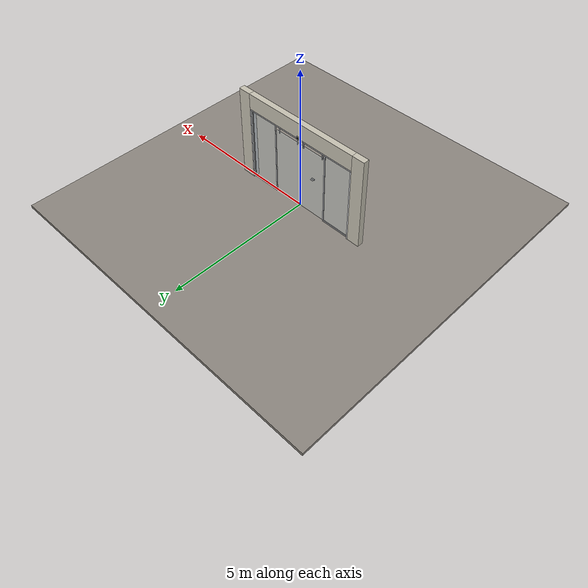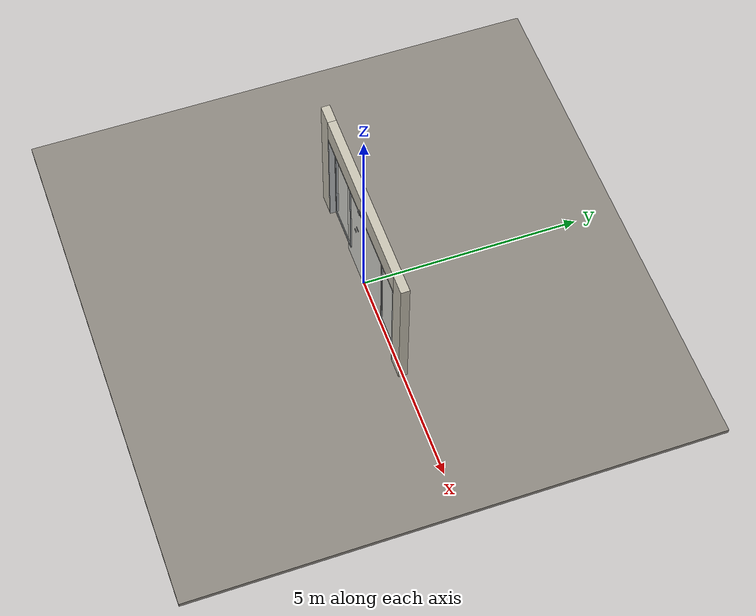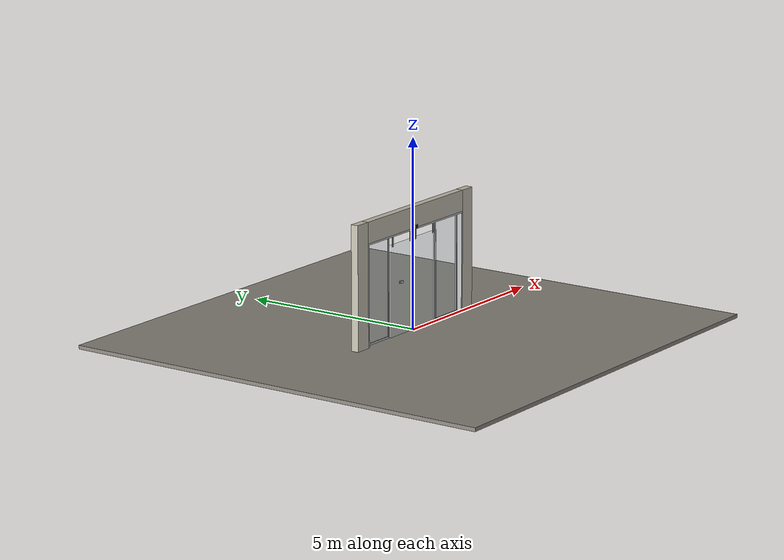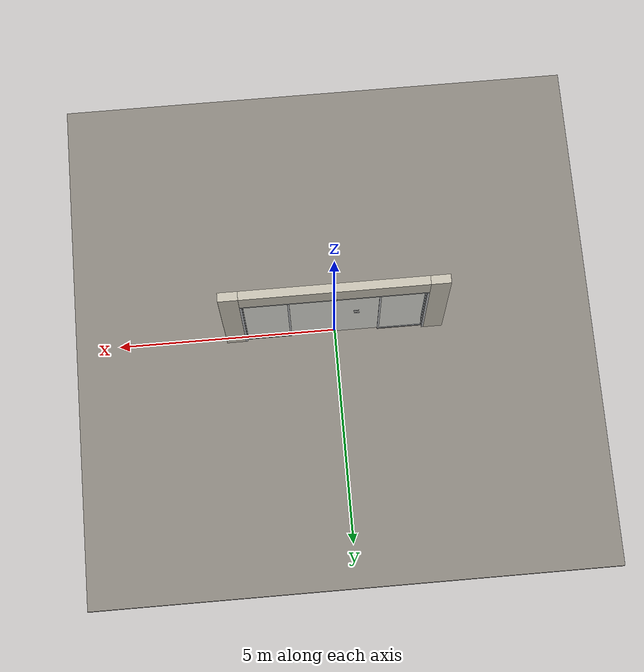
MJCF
<?xml version="1.0" ?>
<mujoco model="db0990_automatic_sliding_full">
  <compiler angle="radian" meshdir="../../hardware" texturedir="../../textures" autolimits="true" inertiafromgeom="false"/>
  <option timestep="0.002" integrator="implicitfast" cone="elliptic" impratio="10" noslip_iterations="3">
    <flag multiccd="enable"/>
  </option>
  <size memory="16M"/>
  <default>
    <geom condim="4" solref="0.005 1" solimp="0.95 0.99 0.001"/>
    <joint solreflimit="0.005 1" solimplimit="0.95 0.99 0.001"/>
    <tendon solreflimit="0.005 1"/>
    <equality solref="0.002 1"/>
  </default>
  <visual>
    <headlight ambient="0.4 0.4 0.4" diffuse="0.7 0.7 0.7" specular="0.2 0.2 0.2"/>
    <quality shadowsize="4096"/>
    <map znear="0.01" zfar="60"/>
  </visual>
  <asset>
    <material name="mat_floor" rgba="0.55 0.53 0.5 1" specular="0.2" shininess="0.15" reflectance="0"/>
    <material name="mat_wall" rgba="0.78 0.76 0.7 1" specular="0.2" shininess="0.1" reflectance="0"/>
    <material name="mat_frame" rgba="0.75 0.76 0.77 1" specular="0.8" shininess="0.65" reflectance="0.4"/>
    <material name="mat_track" rgba="0.8 0.81 0.83 1" specular="0.8" shininess="0.6" reflectance="0.4"/>
    <material name="mat_fixed_glass" rgba="0.85 0.92 0.95 0.25" specular="0.2" shininess="0.95" reflectance="0.1"/>
    <material name="mat_leaf_a" rgba="0.85 0.92 0.95 0.25" specular="0.2" shininess="0.95" reflectance="0.1"/>
    <material name="mat_glass_leaf" rgba="0.85 0.92 0.95 0.25" specular="0.2" shininess="0.95" reflectance="0.1"/>
    <material name="mat_patch" rgba="0.75 0.76 0.77 1" specular="0.8" shininess="0.65" reflectance="0.4"/>
    <material name="mat_roller" rgba="0.65 0.66 0.68 1" specular="0.74" shininess="0.5" reflectance="0.36"/>
    <material name="mat_leaf_b" rgba="0.85 0.92 0.95 0.25" specular="0.2" shininess="0.95" reflectance="0.1"/>
    <material name="mat_sign" rgba="0.75 0.76 0.77 1" specular="0.8" shininess="0.65" reflectance="0.4"/>
    <material name="mat_wallreader" rgba="0.05 0.05 0.05 1" specular="0.38" shininess="0.3" reflectance="0.12"/>
    <material name="mat_hook" rgba="0.75 0.76 0.77 1" specular="0.8" shininess="0.65" reflectance="0.4"/>
    <texture name="skybox" type="skybox" builtin="gradient" rgb1="0.6 0.7 0.85" rgb2="0.9 0.92 0.95" width="256" height="256"/>
  </asset>
  <worldbody>
    <light name="sun" pos="1.5 -2.5 4" dir="-0.3 0.5 -0.8" directional="true" diffuse="0.8 0.8 0.8" specular="0.3 0.3 0.3" castshadow="true"/>
    <light name="fill" pos="-1.5 2.5 3" dir="0.3 -0.5 -0.7" directional="true" diffuse="0.35 0.35 0.4" castshadow="false"/>
    <camera name="robot_view" pos="0 -4.4125 2.5605" xyaxes="1 0 0 0 0.26963 0.962964" fovy="52"/>
    <camera name="far_view" pos="0 4.4125 2.5605" xyaxes="-1 0 0 0 -0.26963 0.962964" fovy="52"/>
    <camera name="iso" pos="3.3535 -3.7065 3.2665" xyaxes="0.741536 0.670913 0 -0.242917 0.268487 0.932151" fovy="46"/>
    <camera name="detail_handle" pos="0.48 -0.8 1.28" xyaxes="0.97561 0.219512 0 -0.070934 0.315262 0.94635" fovy="38"/>
    <geom name="floor" type="box" size="6 6 0.05" pos="0 0 -0.05" material="mat_floor" group="0" contype="1" conaffinity="1" friction="0.8 0.005 0.0001" density="2400"/>
    <geom name="wall_left" type="box" size="0.2175 0.1 1.625" pos="-2.2825 0 1.625" material="mat_wall" group="0" contype="1" conaffinity="1" friction="0.6 0.005 0.0001" density="800"/>
    <geom name="wall_right" type="box" size="0.2175 0.1 1.625" pos="2.2825 0 1.625" material="mat_wall" group="0" contype="1" conaffinity="1" friction="0.6 0.005 0.0001" density="800"/>
    <geom name="wall_header" type="box" size="2.065 0.1 0.2775" pos="0 0 2.9725" material="mat_wall" group="0" contype="1" conaffinity="1" friction="0.6 0.005 0.0001" density="800"/>
    <geom name="jamb_l" type="box" size="0.0225 0.1 1.325" pos="-2.0425 0 1.325" material="mat_frame" group="0" contype="1" conaffinity="1" friction="0.6 0.005 0.0001" density="300"/>
    <geom name="jamb_r" type="box" size="0.0225 0.1 1.325" pos="2.0425 0 1.325" material="mat_frame" group="0" contype="1" conaffinity="1" friction="0.6 0.005 0.0001" density="300"/>
    <geom name="jamb_head" type="box" size="2.065 0.1 0.0225" pos="0 0 2.6725" material="mat_frame" group="0" contype="1" conaffinity="1" friction="0.6 0.005 0.0001" density="300"/>
    <geom name="sidelite_l" type="box" size="0.485 0.003 1.275" pos="-1.515 0.042 1.325" material="mat_fixed_glass" group="0" contype="1" conaffinity="1" friction="0.6 0.005 0.0001" density="2500"/>
    <geom name="sidelite_l_stile_n" type="box" size="0.02 0.012 1.325" pos="-2.02 0.042 1.325" material="mat_frame" group="0" contype="1" conaffinity="1" friction="0.6 0.005 0.0001" density="1400"/>
    <geom name="sidelite_l_stile_p" type="box" size="0.02 0.012 1.325" pos="-1.01 0.042 1.325" material="mat_frame" group="0" contype="1" conaffinity="1" friction="0.6 0.005 0.0001" density="1400"/>
    <geom name="sidelite_l_sill" type="box" size="0.525 0.012 0.025" pos="-1.515 0.042 0.025" material="mat_frame" group="0" contype="1" conaffinity="1" friction="0.6 0.005 0.0001" density="1400"/>
    <geom name="sidelite_l_head" type="box" size="0.525 0.012 0.025" pos="-1.515 0.042 2.625" material="mat_frame" group="0" contype="1" conaffinity="1" friction="0.6 0.005 0.0001" density="1400"/>
    <geom name="sidelite_r" type="box" size="0.485 0.003 1.275" pos="1.515 0.042 1.325" material="mat_fixed_glass" group="0" contype="1" conaffinity="1" friction="0.6 0.005 0.0001" density="2500"/>
    <geom name="sidelite_r_stile_n" type="box" size="0.02 0.012 1.325" pos="1.01 0.042 1.325" material="mat_frame" group="0" contype="1" conaffinity="1" friction="0.6 0.005 0.0001" density="1400"/>
    <geom name="sidelite_r_stile_p" type="box" size="0.02 0.012 1.325" pos="2.02 0.042 1.325" material="mat_frame" group="0" contype="1" conaffinity="1" friction="0.6 0.005 0.0001" density="1400"/>
    <geom name="sidelite_r_sill" type="box" size="0.525 0.012 0.025" pos="1.515 0.042 0.025" material="mat_frame" group="0" contype="1" conaffinity="1" friction="0.6 0.005 0.0001" density="1400"/>
    <geom name="sidelite_r_head" type="box" size="0.525 0.012 0.025" pos="1.515 0.042 2.625" material="mat_frame" group="0" contype="1" conaffinity="1" friction="0.6 0.005 0.0001" density="1400"/>
    <geom name="leaf_a_track_header" type="box" size="1.04 0.09 0.09" pos="-0.99 0 2.785" material="mat_track" group="0" contype="1" conaffinity="1" friction="0.6 0.005 0.0001" density="2700"/>
    <geom name="leaf_b_track_header" type="box" size="1.04 0.09 0.09" pos="0.99 0 2.785" material="mat_track" group="0" contype="1" conaffinity="1" friction="0.6 0.005 0.0001" density="2700"/>
    <geom name="wave_sensor_n" type="box" size="0.05 0.012 0.05" pos="0 -0.112 2.72" material="mat_wallreader" group="0" contype="1" conaffinity="1" friction="0.6 0.005 0.0001" density="1000"/>
    <geom name="wave_sensor_n_pad" type="box" size="0.04 0.0055 0.04" pos="0 -0.095 2.72" material="mat_wallreader" group="1" contype="0" conaffinity="0" density="7850"/>
    <geom name="wave_sensor_p" type="box" size="0.05 0.012 0.05" pos="0 0.112 2.72" material="mat_wallreader" group="0" contype="1" conaffinity="1" friction="0.6 0.005 0.0001" density="1000"/>
    <geom name="wave_sensor_p_pad" type="box" size="0.04 0.0055 0.04" pos="0 0.095 2.72" material="mat_wallreader" group="1" contype="0" conaffinity="0" density="7850"/>
    <site name="approach_point" pos="0 -1.5 0" quat="1 0 0 0" size="0.05" rgba="0.2 0.9 0.2 0.5" group="4"/>
    <site name="goal_point" pos="0 1.5 0" quat="1 0 0 0" size="0.05" rgba="0.2 0.9 0.2 0.5" group="4"/>
    <site name="door_plane_center" pos="0 0 1.325" quat="1 0 0 0" size="0.02" rgba="0.2 0.9 0.2 0.5" group="4"/>
    <body name="leaf_a" pos="-0.5 0 0">
      <inertial pos="0 0 1.257836" mass="82.836016" quat="-0.5 -0.5 -0.5 0.5" diaginertia="7.066127428 42.933790525 49.972630195"/>
      <joint name="leaf_a_slide" type="slide" axis="-1 0 0" limited="true" range="0 0.98" damping="6.1425" frictionloss="9.749771" armature="0.5"/>
      <geom name="leaf_a_glass" type="box" size="0.5 0.0225 1.2" pos="0 0 1.212" material="mat_glass_leaf" group="0" contype="1" conaffinity="1" friction="0.4 0.005 0.0001" density="1"/>
      <geom name="leaf_a_carrier_0" type="box" size="0.02 0.005 0.147" pos="-0.38 0 2.499" material="mat_roller" group="1" contype="0" conaffinity="0" density="7850"/>
      <geom name="leaf_a_carrier_wheel_0" type="cylinder" size="0.014 0.006" pos="-0.38 0 2.636" quat="0.707107 -0.707107 0 0" material="mat_roller" group="1" contype="0" conaffinity="0" density="7850"/>
      <geom name="leaf_a_carrier_1" type="box" size="0.02 0.005 0.147" pos="0.38 0 2.499" material="mat_roller" group="1" contype="0" conaffinity="0" density="7850"/>
      <geom name="leaf_a_carrier_wheel_1" type="cylinder" size="0.014 0.006" pos="0.38 0 2.636" quat="0.707107 -0.707107 0 0" material="mat_roller" group="1" contype="0" conaffinity="0" density="7850"/>
      <geom name="sign_push" type="box" size="0.06 0.001 0.03" pos="0 -0.0235 1.362" material="mat_sign" group="2" contype="0" conaffinity="0" density="7900"/>
      <geom name="sign_pull" type="box" size="0.06 0.001 0.03" pos="0 0.0235 1.362" material="mat_sign" group="2" contype="0" conaffinity="0" density="7900"/>
      <site name="leaf_a_edge_mid" pos="0.5 0 1.212" quat="1 0 0 0" size="0.02" rgba="0.2 0.9 0.2 0.5" group="4"/>
    </body>
    <body name="leaf_b" pos="0.5 0 0">
      <inertial pos="0 0 1.257413" mass="82.813984" quat="-0.5 -0.5 -0.5 0.5" diaginertia="7.092378257 43.092920853 50.158279794"/>
      <joint name="leaf_b_slide" type="slide" axis="1 0 0" limited="true" range="0 0.98" damping="6.1425" frictionloss="9.749771" armature="0.5"/>
      <geom name="leaf_b_glass" type="box" size="0.5 0.0225 1.2" pos="0 0 1.212" material="mat_glass_leaf" group="0" contype="1" conaffinity="1" friction="0.4 0.005 0.0001" density="1"/>
      <geom name="leaf_b_carrier_0" type="box" size="0.02 0.005 0.147" pos="-0.38 0 2.499" material="mat_roller" group="1" contype="0" conaffinity="0" density="7850"/>
      <geom name="leaf_b_carrier_wheel_0" type="cylinder" size="0.014 0.006" pos="-0.38 0 2.636" quat="0.707107 -0.707107 0 0" material="mat_roller" group="1" contype="0" conaffinity="0" density="7850"/>
      <geom name="leaf_b_carrier_1" type="box" size="0.02 0.005 0.147" pos="0.38 0 2.499" material="mat_roller" group="1" contype="0" conaffinity="0" density="7850"/>
      <geom name="leaf_b_carrier_wheel_1" type="cylinder" size="0.014 0.006" pos="0.38 0 2.636" quat="0.707107 -0.707107 0 0" material="mat_roller" group="1" contype="0" conaffinity="0" density="7850"/>
      <site name="leaf_b_edge_mid" pos="-0.5 0 1.212" quat="1 0 0 0" size="0.02" rgba="0.2 0.9 0.2 0.5" group="4"/>
    </body>
  </worldbody>
  <equality>
    <joint name="center_couple" joint1="leaf_b_slide" joint2="leaf_a_slide" polycoef="0 1 0 0 0" active="true"/>
  </equality>
  <actuator>
    <position name="leaf_a_drive" joint="leaf_a_slide" kp="400" kv="60" forcerange="-150 150" ctrlrange="0 0.98"/>
    <position name="leaf_b_drive" joint="leaf_b_slide" kp="400" kv="60" forcerange="-150 150" ctrlrange="0 0.98"/>
  </actuator>
  <sensor>
    <jointpos name="leaf_a_slide_pos" joint="leaf_a_slide"/>
    <jointvel name="leaf_a_slide_vel" joint="leaf_a_slide"/>
    <jointpos name="leaf_b_slide_pos" joint="leaf_b_slide"/>
    <jointvel name="leaf_b_slide_vel" joint="leaf_b_slide"/>
  </sensor>
</mujoco>
